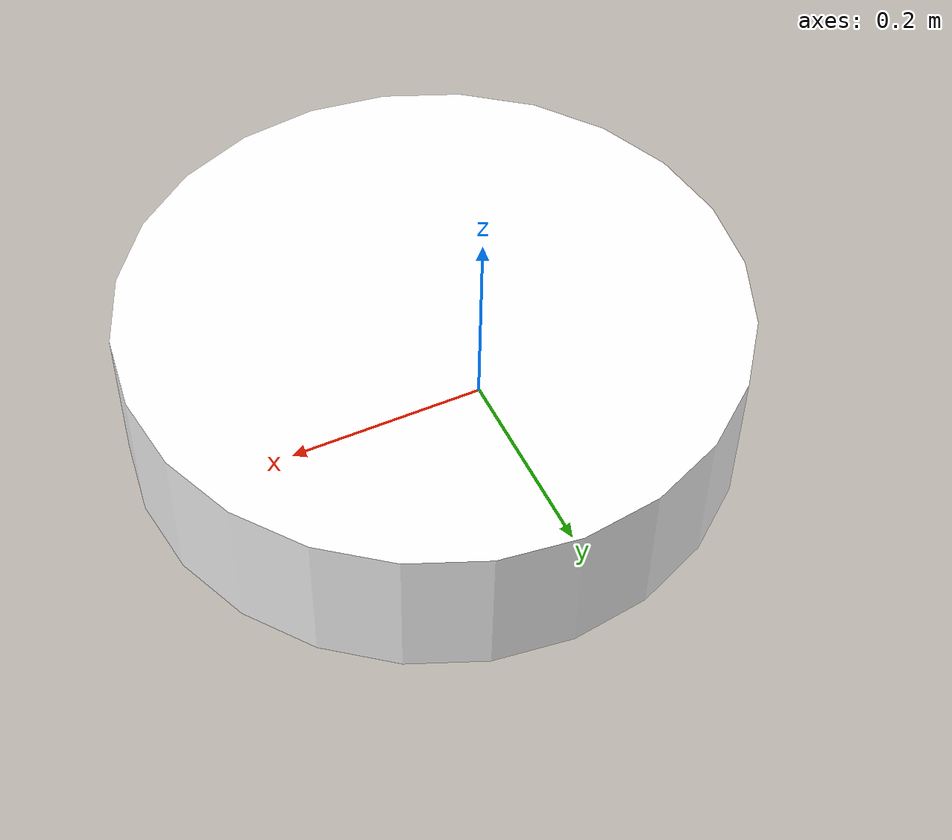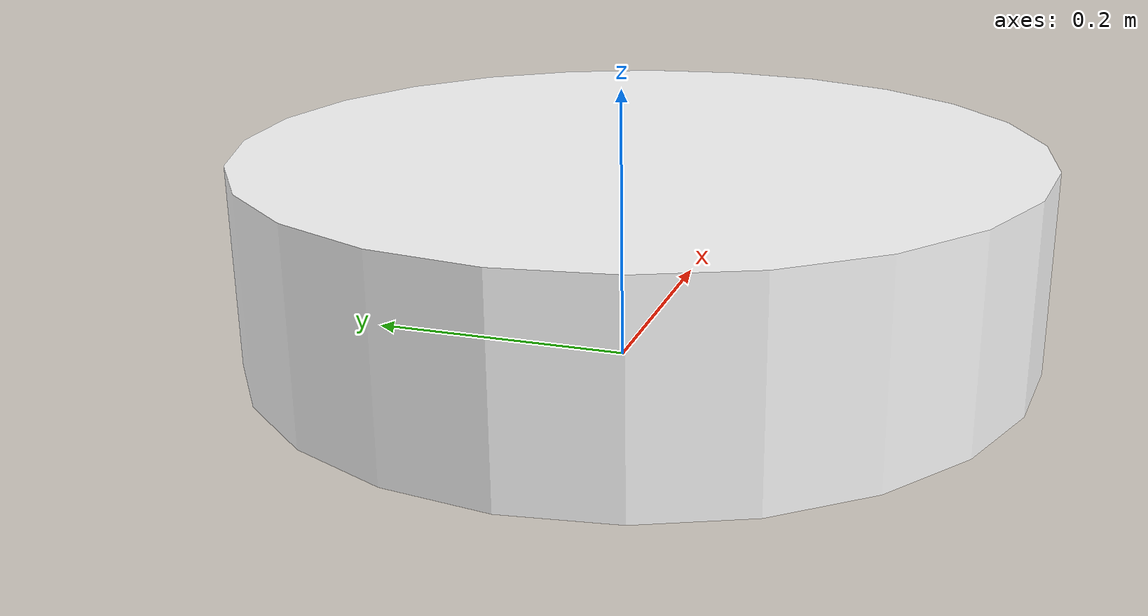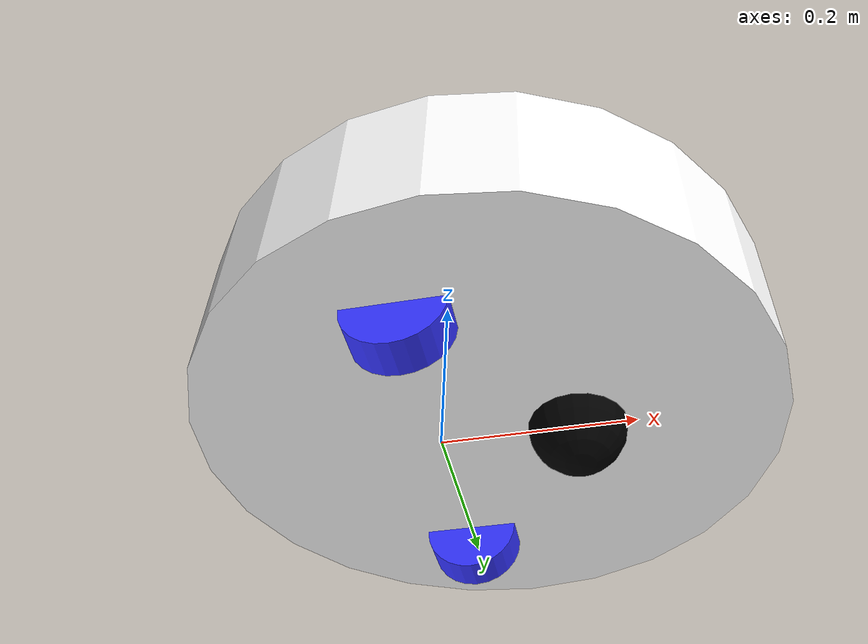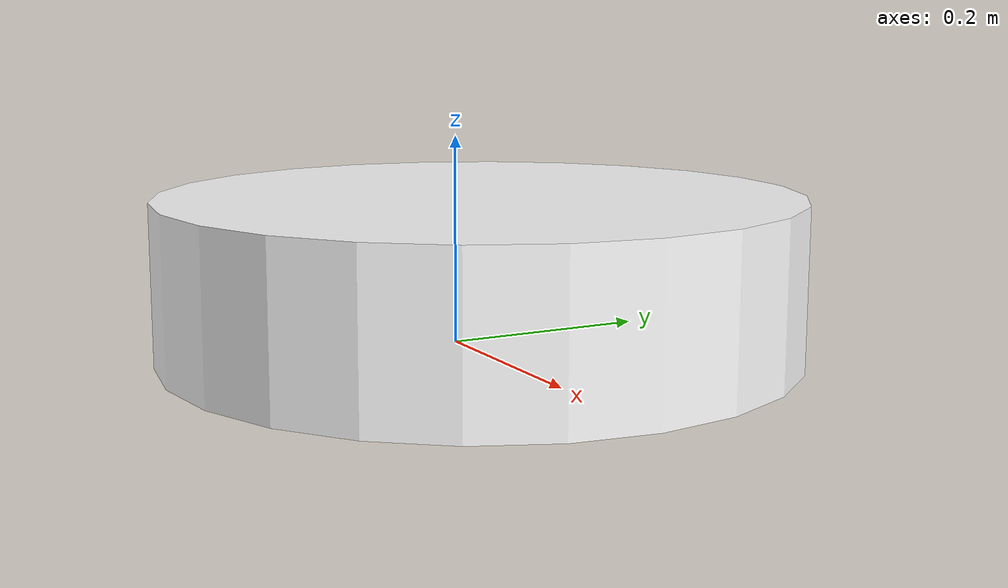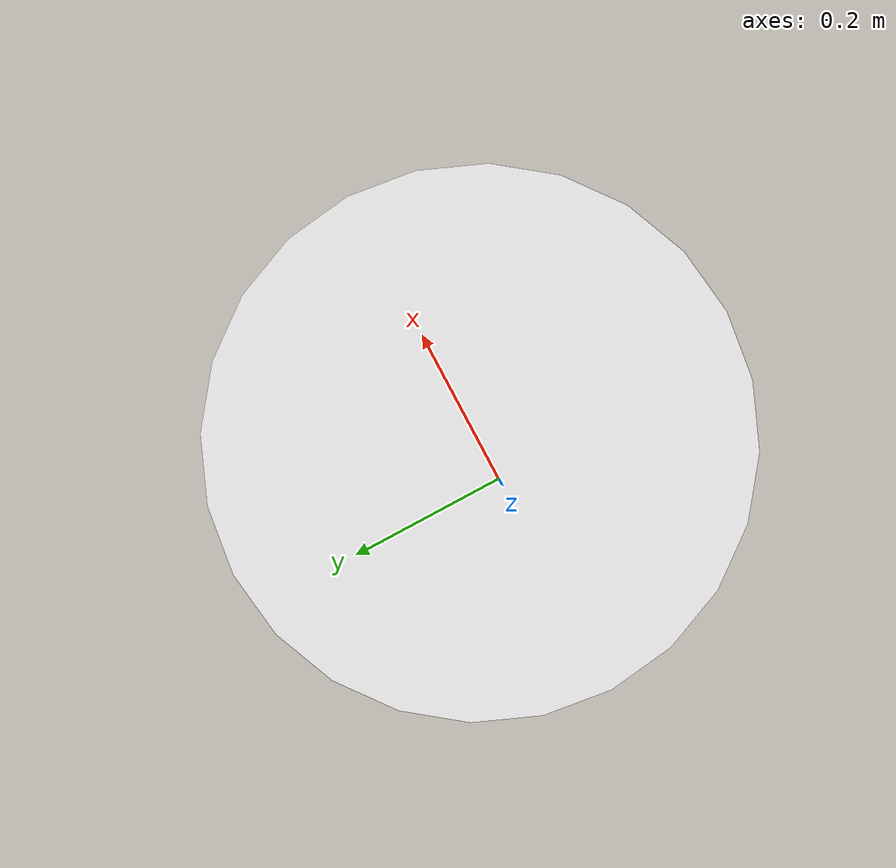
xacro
<?xml version="1.0" encoding='UTF-8'?>
<robot xmlns:xacro="http://www.ros.org/wiki/xacro">
<xacro:include filename="$(find robot_project_pkg)/urdf/inertial_calculations.xacro"/>
    <material name="white">
        <color rgba="1 1 1 1"/>
    </material>

    <material name="orange">
        <color rgba="1 0.3 0.1 1"/>
    </material>

    <material name="blue">
        <color rgba="0.2 0.2 1 1"/>
    </material>

    <material name="black">
        <color rgba="0 0 0 1"/>
    </material>

    <!-- Base link: asse di rotazione delle ruote con asse di rotazione al centro-->
    <link name="base_link">
    </link>

    <!-- chassis link-->
    <joint name="chassis_joint" type="fixed">
        <parent link="base_link"/>
        <child link="chassis"/>
        <!-- voglio l'origine degli assi in basso e al centro parte posteriore del robot, dietro l'asse di rotazione delle ruote  -->
        <origin xyz="-0.1 0 0"/>
    </joint>

    <link name="chassis">
        <visual>
            <!-- voglio l'origine degli assi in basso e nella parte posteriore del robot, ma di default io avrò l'origine degli assi al centro dello chassis  -->
            <origin xyz="0.15 0 0.075"/>
            <geometry>
                <!-- forma cilindrica  -->
                <cylinder radius="0.3" length="0.15"/>
            </geometry>
            <material name="white"/>
        </visual>

		<!-- aggiungo le collisioni allo chassis: il collider ha la stessa forma dello chassis-->
		<!-- i collider possono avere forme diverse, in tal caso nella visualizzazione su rviz si vedranno tutte le differenze-->
        <collision>
			<geometry>
            	<cylinder radius="0.3" length="0.15"/>
			</geometry>
		</collision>
		<xacro:inertial_cylinder  mass="0.8" length="0.15" radius="0.3" >
			<!--l'origine deve essere la stessa del visual(approfondire!!!)-->
			<origin xyz="0.15 0 0.075" rpy="0 0 0"/>
		</xacro:inertial_cylinder >

    </link>

    <!-- Left wheel -->
    <joint name="left_wheel_joint" type="continuous">
        <parent link="base_link"/>
        <child link="left_wheel"/>
        <!-- voglio che la ruota sia spostata rispetto al centro -->
        <!-- voglio l'origine degli assi in basso e al centro parte posteriore del robot, dietro l'asse di rotazione delle ruote  -->
        <!-- r->roll (x) p->pitch(y) y->yaw(z)  -->
        <!-- le x aumentano verso dx  -->
        <origin xyz="0 0.175 0" rpy="-1.5708 0 0"/>
        <!-- deve ruotare lungo l'asse z(rotazione positiva in senso antiorario)  -->
        <axis xyz="0 0 1"/>
    </joint>

    <link name="left_wheel">
        <visual>
            <geometry>
                <cylinder radius="0.05" length="0.04"/>
            </geometry>
            <material name="blue"/>
        </visual>
		<!-- aggiungo le collisioni alla ruota cosi da rendere possibile il movimento il collider ha la stessa forma della ruota-->
        <collision>
			<geometry>
                <cylinder radius="0.05" length="0.04"/>
            </geometry>
		</collision>
		<xacro:inertial_cylinder  mass="0.1" length="0.04" radius="0.05" >
			<!--l'origine deve essere la stessa del visual(approfondire!!!)-->
			<origin xyz="0 0 0" rpy="0 0 0"/>
		</xacro:inertial_cylinder >
    </link>

    <!-- Right wheel -->
    <joint name="right_wheel_joint" type="continuous">
        <parent link="base_link"/>
        <child link="right_wheel"/>
        <!-- voglio che la ruota sia spostata rispetto al centro -->
        <!-- voglio l'origine degli assi in basso e al centro parte posteriore del robot, dietro l'asse di rotazione delle ruote  -->
        <!-- r->roll (x) p->pitch(y) y->yaw(z)  -->
        <!-- sono all'altro lato rispetto alla ruota sinistra(ruoto di pi/2 e sposto a sx la ruota) -->
        <origin xyz="0 -0.175 0" rpy="1.5708 0 0"/>
        <!-- deve ruotare lungo l'asse z(rotazione positiva in senso antiorario)  -->
        <axis xyz="0 0 -1"/>
    </joint>

    <link name="right_wheel">
        <visual>
            <geometry>
                <cylinder radius="0.05" length="0.04"/>
            </geometry>
            <material name="blue"/>
        </visual>
		<!-- aggiungo le collisioni alla ruota cosi da rendere possibile il movimento il collider ha la stessa forma della ruota-->
        <collision>
			<geometry>
                <cylinder radius="0.05" length="0.04"/>
            </geometry>
		</collision>
		<xacro:inertial_cylinder  mass="0.1" length="0.04" radius="0.05" >
			<!--l'origine deve essere la stessa del visual(approfondire!!!)-->
			<origin xyz="0 0 0" rpy="0 0 0"/>
		</xacro:inertial_cylinder >
    </link>

	<!-- Ruota centrale -->
    <joint name="central_wheel_joint" type="continuous">
        <parent link="chassis"/>
        <child link="central_wheel"/>
        <!-- voglio che la ruota sia spostata rispetto al centro -->
        <!-- voglio l'origine degli assi spostata in avanti  -->
        <origin xyz="0.24 0 0" />

    </joint>

    <link name="central_wheel">
        <visual>
            <geometry>
                <sphere radius="0.05"/>
            </geometry>
            <material name="black"/>
        </visual>
		<!-- aggiungo le collisioni alla ruota cosi da rendere possibile il movimento il collider ha la stessa forma della ruota-->
        <collision>
			<geometry>
                <sphere radius="0.05"/>
            </geometry>
		</collision>
		<xacro:inertial_sphere  mass="0.1" radius="0.05" >
			<!--l'origine deve essere la stessa del visual(approfondire!!!)-->
			<origin xyz="0 0 0" rpy="0 0 0"/>
		</xacro:inertial_sphere >
    </link>

</robot>
